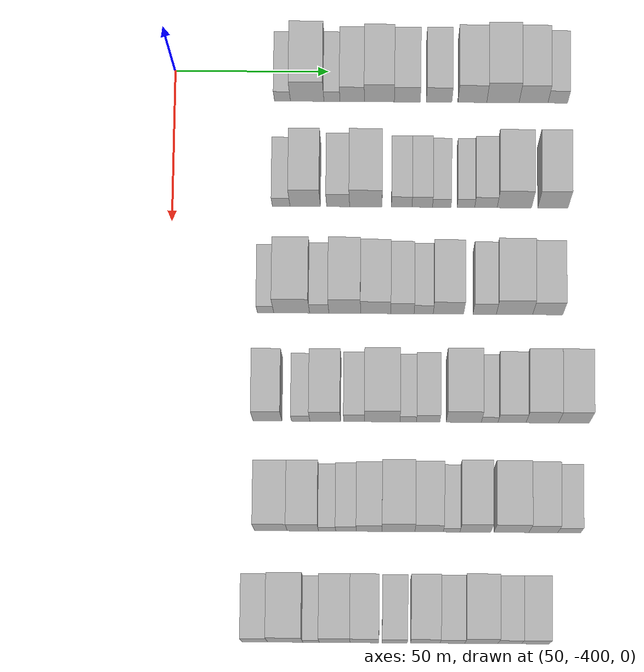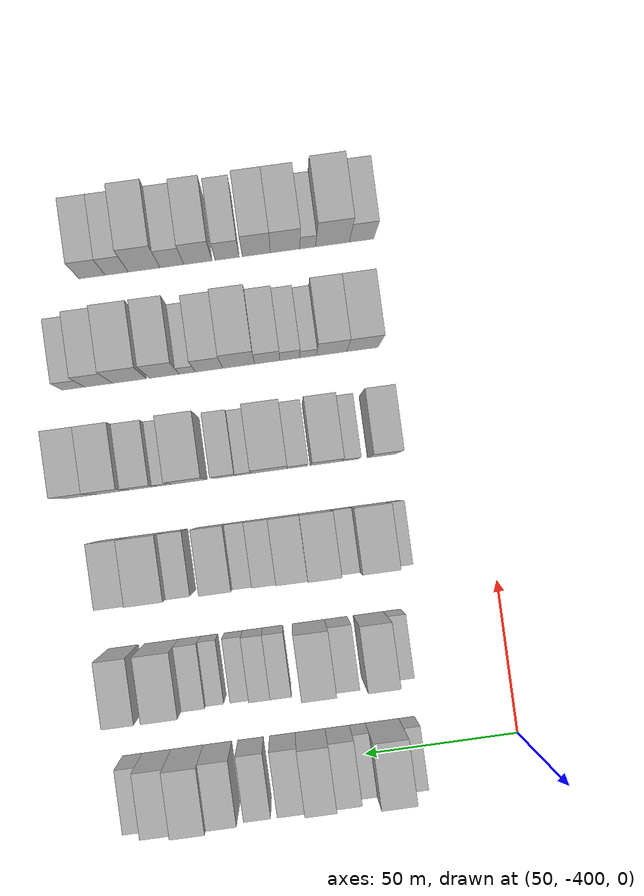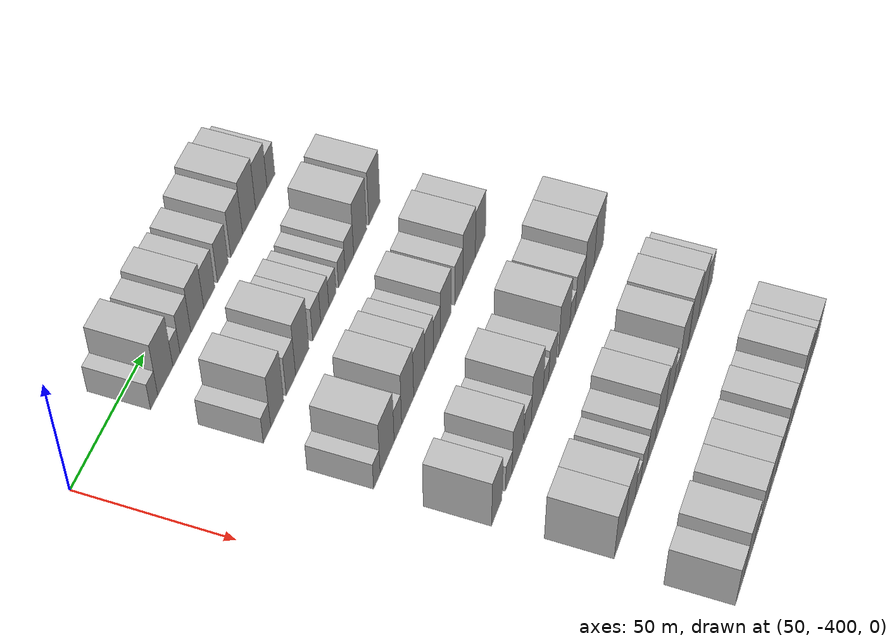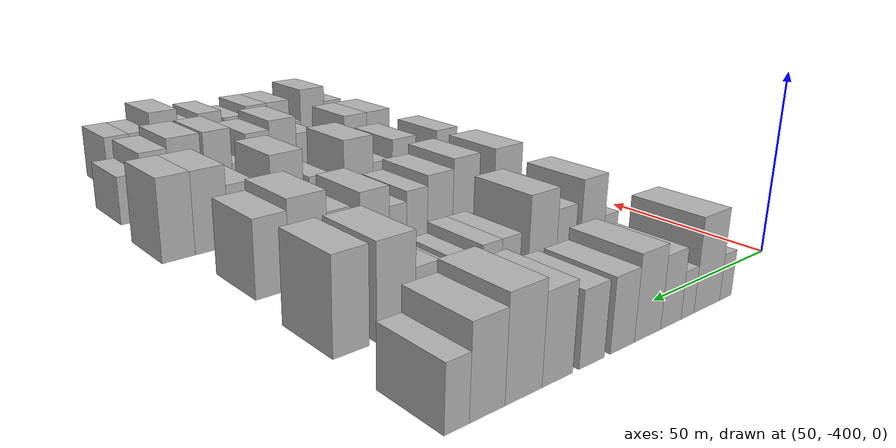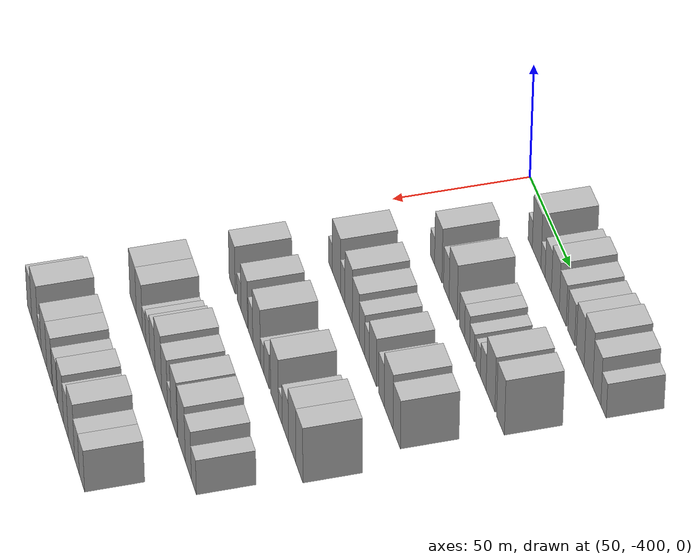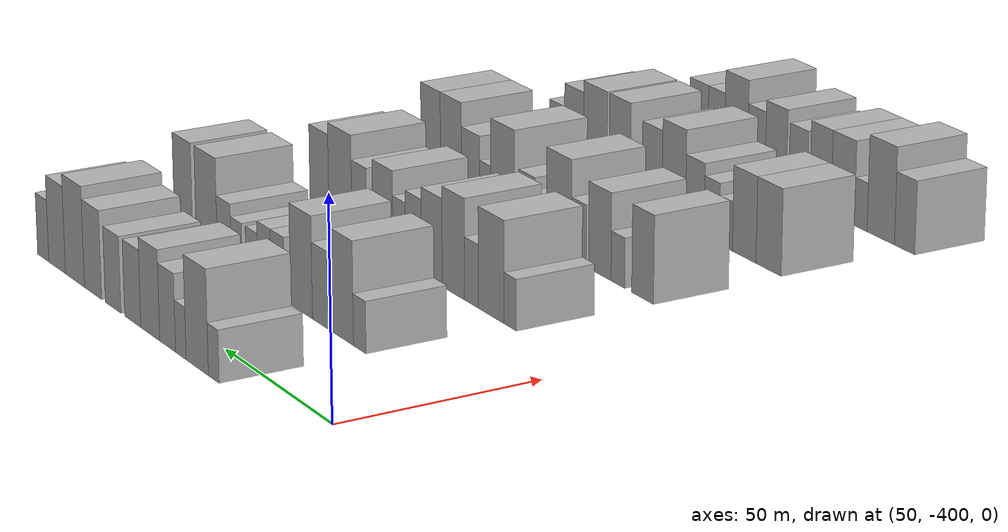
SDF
<sdf version="1.6">
 <world name="default">
  <model name="building_24">
   <static>1</static>
   <pose>50.0000 -364.8894 0 0.000000 0.000000 0.000000</pose>
   <link name="link">
    <pose>0 0 6.00 0 0 0</pose>
    <collision name="collision"><geometry><box><size>20.0000 5.1785 12.0000</size></box></geometry></collision>
    <visual name="visual">
     <cast_shadows>0</cast_shadows>
     <geometry><box><size>20.0000 5.1785 12.0000</size></box></geometry>
     <material>
      <script>
       <uri>model://HANNAS_wall/materials/scripts</uri>
       <uri>model://HANNAS_wall/materials/textures</uri>
       <name>vrc/HANNAS_wall</name>
      </script>
     </material>
    </visual>
   </link>
  </model>
  <model name="building_25">
   <static>1</static>
   <pose>50.0000 -356.8521 0 0.000000 0.000000 0.000000</pose>
   <link name="link">
    <pose>0 0 12.00 0 0 0</pose>
    <collision name="collision"><geometry><box><size>20.0000 10.8959 24.0000</size></box></geometry></collision>
    <visual name="visual">
     <cast_shadows>0</cast_shadows>
     <geometry><box><size>20.0000 10.8959 24.0000</size></box></geometry>
     <material>
      <script>
       <uri>model://HANNAS_wall/materials/scripts</uri>
       <uri>model://HANNAS_wall/materials/textures</uri>
       <name>vrc/HANNAS_wall</name>
      </script>
     </material>
    </visual>
   </link>
  </model>
  <model name="building_26">
   <static>1</static>
   <pose>50.0000 -348.7964 0 0.000000 0.000000 0.000000</pose>
   <link name="link">
    <pose>0 0 6.00 0 0 0</pose>
    <collision name="collision"><geometry><box><size>20.0000 5.2155 12.0000</size></box></geometry></collision>
    <visual name="visual">
     <cast_shadows>0</cast_shadows>
     <geometry><box><size>20.0000 5.2155 12.0000</size></box></geometry>
     <material>
      <script>
       <uri>model://HANNAS_wall/materials/scripts</uri>
       <uri>model://HANNAS_wall/materials/textures</uri>
       <name>vrc/HANNAS_wall</name>
      </script>
     </material>
    </visual>
   </link>
  </model>
  <model name="building_27">
   <static>1</static>
   <pose>50.0000 -342.2135 0 0.000000 0.000000 0.000000</pose>
   <link name="link">
    <pose>0 0 9.00 0 0 0</pose>
    <collision name="collision"><geometry><box><size>20.0000 7.9502 18.0000</size></box></geometry></collision>
    <visual name="visual">
     <cast_shadows>0</cast_shadows>
     <geometry><box><size>20.0000 7.9502 18.0000</size></box></geometry>
     <material>
      <script>
       <uri>model://HANNAS_wall/materials/scripts</uri>
       <uri>model://HANNAS_wall/materials/textures</uri>
       <name>vrc/HANNAS_wall</name>
      </script>
     </material>
    </visual>
   </link>
  </model>
  <model name="building_28">
   <static>1</static>
   <pose>50.0000 -333.3798 0 0.000000 0.000000 0.000000</pose>
   <link name="link">
    <pose>0 0 10.50 0 0 0</pose>
    <collision name="collision"><geometry><box><size>20.0000 9.7173 21.0000</size></box></geometry></collision>
    <visual name="visual">
     <cast_shadows>0</cast_shadows>
     <geometry><box><size>20.0000 9.7173 21.0000</size></box></geometry>
     <material>
      <script>
       <uri>model://HANNAS_wall/materials/scripts</uri>
       <uri>model://HANNAS_wall/materials/textures</uri>
       <name>vrc/HANNAS_wall</name>
      </script>
     </material>
    </visual>
   </link>
  </model>
  <model name="building_29">
   <static>1</static>
   <pose>50.0000 -324.3185 0 0.000000 0.000000 0.000000</pose>
   <link name="link">
    <pose>0 0 9.00 0 0 0</pose>
    <collision name="collision"><geometry><box><size>20.0000 8.4054 18.0000</size></box></geometry></collision>
    <visual name="visual">
     <cast_shadows>0</cast_shadows>
     <geometry><box><size>20.0000 8.4054 18.0000</size></box></geometry>
     <material>
      <script>
       <uri>model://HANNAS_wall/materials/scripts</uri>
       <uri>model://HANNAS_wall/materials/textures</uri>
       <name>vrc/HANNAS_wall</name>
      </script>
     </material>
    </visual>
   </link>
  </model>
  <model name="building_30">
   <static>1</static>
   <pose>50.0000 -313.9648 0 0.000000 0.000000 0.000000</pose>
   <link name="link">
    <pose>0 0 9.00 0 0 0</pose>
    <collision name="collision"><geometry><box><size>20.0000 8.3019 18.0000</size></box></geometry></collision>
    <visual name="visual">
     <cast_shadows>0</cast_shadows>
     <geometry><box><size>20.0000 8.3019 18.0000</size></box></geometry>
     <material>
      <script>
       <uri>model://HANNAS_wall/materials/scripts</uri>
       <uri>model://HANNAS_wall/materials/textures</uri>
       <name>vrc/HANNAS_wall</name>
      </script>
     </material>
    </visual>
   </link>
  </model>
  <model name="building_31">
   <static>1</static>
   <pose>50.0000 -303.1424 0 0.000000 0.000000 0.000000</pose>
   <link name="link">
    <pose>0 0 10.50 0 0 0</pose>
    <collision name="collision"><geometry><box><size>20.0000 9.3428 21.0000</size></box></geometry></collision>
    <visual name="visual">
     <cast_shadows>0</cast_shadows>
     <geometry><box><size>20.0000 9.3428 21.0000</size></box></geometry>
     <material>
      <script>
       <uri>model://HANNAS_wall/materials/scripts</uri>
       <uri>model://HANNAS_wall/materials/textures</uri>
       <name>vrc/HANNAS_wall</name>
      </script>
     </material>
    </visual>
   </link>
  </model>
  <model name="building_32">
   <static>1</static>
   <pose>50.0000 -293.2054 0 0.000000 0.000000 0.000000</pose>
   <link name="link">
    <pose>0 0 12.00 0 0 0</pose>
    <collision name="collision"><geometry><box><size>20.0000 10.5313 24.0000</size></box></geometry></collision>
    <visual name="visual">
     <cast_shadows>0</cast_shadows>
     <geometry><box><size>20.0000 10.5313 24.0000</size></box></geometry>
     <material>
      <script>
       <uri>model://HANNAS_wall/materials/scripts</uri>
       <uri>model://HANNAS_wall/materials/textures</uri>
       <name>vrc/HANNAS_wall</name>
      </script>
     </material>
    </visual>
   </link>
  </model>
  <model name="building_33">
   <static>1</static>
   <pose>50.0000 -283.2425 0 0.000000 0.000000 0.000000</pose>
   <link name="link">
    <pose>0 0 10.50 0 0 0</pose>
    <collision name="collision"><geometry><box><size>20.0000 9.3945 21.0000</size></box></geometry></collision>
    <visual name="visual">
     <cast_shadows>0</cast_shadows>
     <geometry><box><size>20.0000 9.3945 21.0000</size></box></geometry>
     <material>
      <script>
       <uri>model://HANNAS_wall/materials/scripts</uri>
       <uri>model://HANNAS_wall/materials/textures</uri>
       <name>vrc/HANNAS_wall</name>
      </script>
     </material>
    </visual>
   </link>
  </model>
  <model name="building_34">
   <static>1</static>
   <pose>50.0000 -275.3735 0 0.000000 0.000000 0.000000</pose>
   <link name="link">
    <pose>0 0 7.50 0 0 0</pose>
    <collision name="collision"><geometry><box><size>20.0000 6.3436 15.0000</size></box></geometry></collision>
    <visual name="visual">
     <cast_shadows>0</cast_shadows>
     <geometry><box><size>20.0000 6.3436 15.0000</size></box></geometry>
     <material>
      <script>
       <uri>model://HANNAS_wall/materials/scripts</uri>
       <uri>model://HANNAS_wall/materials/textures</uri>
       <name>vrc/HANNAS_wall</name>
      </script>
     </material>
    </visual>
   </link>
  </model>
  <model name="building_146">
   <static>1</static>
   <pose>85.0000 -364.8351 0 0.000000 0.000000 0.000000</pose>
   <link name="link">
    <pose>0 0 6.00 0 0 0</pose>
    <collision name="collision"><geometry><box><size>20.0000 5.6980 12.0000</size></box></geometry></collision>
    <visual name="visual">
     <cast_shadows>0</cast_shadows>
     <geometry><box><size>20.0000 5.6980 12.0000</size></box></geometry>
     <material>
      <script>
       <uri>model://HANNAS_wall/materials/scripts</uri>
       <uri>model://HANNAS_wall/materials/textures</uri>
       <name>vrc/HANNAS_wall</name>
      </script>
     </material>
    </visual>
   </link>
  </model>
  <model name="building_147">
   <static>1</static>
   <pose>85.0000 -357.0674 0 0.000000 0.000000 0.000000</pose>
   <link name="link">
    <pose>0 0 12.00 0 0 0</pose>
    <collision name="collision"><geometry><box><size>20.0000 9.8374 24.0000</size></box></geometry></collision>
    <visual name="visual">
     <cast_shadows>0</cast_shadows>
     <geometry><box><size>20.0000 9.8374 24.0000</size></box></geometry>
     <material>
      <script>
       <uri>model://HANNAS_wall/materials/scripts</uri>
       <uri>model://HANNAS_wall/materials/textures</uri>
       <name>vrc/HANNAS_wall</name>
      </script>
     </material>
    </visual>
   </link>
  </model>
  <model name="building_148">
   <static>1</static>
   <pose>85.0000 -346.4494 0 0.000000 0.000000 0.000000</pose>
   <link name="link">
    <pose>0 0 9.00 0 0 0</pose>
    <collision name="collision"><geometry><box><size>20.0000 7.3985 18.0000</size></box></geometry></collision>
    <visual name="visual">
     <cast_shadows>0</cast_shadows>
     <geometry><box><size>20.0000 7.3985 18.0000</size></box></geometry>
     <material>
      <script>
       <uri>model://HANNAS_wall/materials/scripts</uri>
       <uri>model://HANNAS_wall/materials/textures</uri>
       <name>vrc/HANNAS_wall</name>
      </script>
     </material>
    </visual>
   </link>
  </model>
  <model name="building_149">
   <static>1</static>
   <pose>85.0000 -337.4831 0 0.000000 0.000000 0.000000</pose>
   <link name="link">
    <pose>0 0 12.00 0 0 0</pose>
    <collision name="collision"><geometry><box><size>20.0000 10.5341 24.0000</size></box></geometry></collision>
    <visual name="visual">
     <cast_shadows>0</cast_shadows>
     <geometry><box><size>20.0000 10.5341 24.0000</size></box></geometry>
     <material>
      <script>
       <uri>model://HANNAS_wall/materials/scripts</uri>
       <uri>model://HANNAS_wall/materials/textures</uri>
       <name>vrc/HANNAS_wall</name>
      </script>
     </material>
    </visual>
   </link>
  </model>
  <model name="building_150">
   <static>1</static>
   <pose>85.0000 -325.9129 0 0.000000 0.000000 0.000000</pose>
   <link name="link">
    <pose>0 0 7.50 0 0 0</pose>
    <collision name="collision"><geometry><box><size>20.0000 6.6063 15.0000</size></box></geometry></collision>
    <visual name="visual">
     <cast_shadows>0</cast_shadows>
     <geometry><box><size>20.0000 6.6063 15.0000</size></box></geometry>
     <material>
      <script>
       <uri>model://HANNAS_wall/materials/scripts</uri>
       <uri>model://HANNAS_wall/materials/textures</uri>
       <name>vrc/HANNAS_wall</name>
      </script>
     </material>
    </visual>
   </link>
  </model>
  <model name="building_151">
   <static>1</static>
   <pose>85.0000 -319.3068 0 0.000000 0.000000 0.000000</pose>
   <link name="link">
    <pose>0 0 7.50 0 0 0</pose>
    <collision name="collision"><geometry><box><size>20.0000 6.6060 15.0000</size></box></geometry></collision>
    <visual name="visual">
     <cast_shadows>0</cast_shadows>
     <geometry><box><size>20.0000 6.6060 15.0000</size></box></geometry>
     <material>
      <script>
       <uri>model://HANNAS_wall/materials/scripts</uri>
       <uri>model://HANNAS_wall/materials/textures</uri>
       <name>vrc/HANNAS_wall</name>
      </script>
     </material>
    </visual>
   </link>
  </model>
  <model name="building_152">
   <static>1</static>
   <pose>85.0000 -313.0281 0 0.000000 0.000000 0.000000</pose>
   <link name="link">
    <pose>0 0 6.00 0 0 0</pose>
    <collision name="collision"><geometry><box><size>20.0000 5.9512 12.0000</size></box></geometry></collision>
    <visual name="visual">
     <cast_shadows>0</cast_shadows>
     <geometry><box><size>20.0000 5.9512 12.0000</size></box></geometry>
     <material>
      <script>
       <uri>model://HANNAS_wall/materials/scripts</uri>
       <uri>model://HANNAS_wall/materials/textures</uri>
       <name>vrc/HANNAS_wall</name>
      </script>
     </material>
    </visual>
   </link>
  </model>
  <model name="building_153">
   <static>1</static>
   <pose>85.0000 -305.2150 0 0.000000 0.000000 0.000000</pose>
   <link name="link">
    <pose>0 0 6.00 0 0 0</pose>
    <collision name="collision"><geometry><box><size>20.0000 5.6751 12.0000</size></box></geometry></collision>
    <visual name="visual">
     <cast_shadows>0</cast_shadows>
     <geometry><box><size>20.0000 5.6751 12.0000</size></box></geometry>
     <material>
      <script>
       <uri>model://HANNAS_wall/materials/scripts</uri>
       <uri>model://HANNAS_wall/materials/textures</uri>
       <name>vrc/HANNAS_wall</name>
      </script>
     </material>
    </visual>
   </link>
  </model>
  <model name="building_154">
   <static>1</static>
   <pose>85.0000 -298.7469 0 0.000000 0.000000 0.000000</pose>
   <link name="link">
    <pose>0 0 7.50 0 0 0</pose>
    <collision name="collision"><geometry><box><size>20.0000 7.2611 15.0000</size></box></geometry></collision>
    <visual name="visual">
     <cast_shadows>0</cast_shadows>
     <geometry><box><size>20.0000 7.2611 15.0000</size></box></geometry>
     <material>
      <script>
       <uri>model://HANNAS_wall/materials/scripts</uri>
       <uri>model://HANNAS_wall/materials/textures</uri>
       <name>vrc/HANNAS_wall</name>
      </script>
     </material>
    </visual>
   </link>
  </model>
  <model name="building_155">
   <static>1</static>
   <pose>85.0000 -289.5747 0 0.000000 0.000000 0.000000</pose>
   <link name="link">
    <pose>0 0 12.00 0 0 0</pose>
    <collision name="collision"><geometry><box><size>20.0000 11.0833 24.0000</size></box></geometry></collision>
    <visual name="visual">
     <cast_shadows>0</cast_shadows>
     <geometry><box><size>20.0000 11.0833 24.0000</size></box></geometry>
     <material>
      <script>
       <uri>model://HANNAS_wall/materials/scripts</uri>
       <uri>model://HANNAS_wall/materials/textures</uri>
       <name>vrc/HANNAS_wall</name>
      </script>
     </material>
    </visual>
   </link>
  </model>
  <model name="building_156">
   <static>1</static>
   <pose>85.0000 -277.1607 0 0.000000 0.000000 0.000000</pose>
   <link name="link">
    <pose>0 0 12.00 0 0 0</pose>
    <collision name="collision"><geometry><box><size>20.0000 9.7446 24.0000</size></box></geometry></collision>
    <visual name="visual">
     <cast_shadows>0</cast_shadows>
     <geometry><box><size>20.0000 9.7446 24.0000</size></box></geometry>
     <material>
      <script>
       <uri>model://HANNAS_wall/materials/scripts</uri>
       <uri>model://HANNAS_wall/materials/textures</uri>
       <name>vrc/HANNAS_wall</name>
      </script>
     </material>
    </visual>
   </link>
  </model>
  <model name="building_270">
   <static>1</static>
   <pose>120.0000 -369.3644 0 0.000000 0.000000 0.000000</pose>
   <link name="link">
    <pose>0 0 6.00 0 0 0</pose>
    <collision name="collision"><geometry><box><size>20.0000 5.2634 12.0000</size></box></geometry></collision>
    <visual name="visual">
     <cast_shadows>0</cast_shadows>
     <geometry><box><size>20.0000 5.2634 12.0000</size></box></geometry>
     <material>
      <script>
       <uri>model://HANNAS_wall/materials/scripts</uri>
       <uri>model://HANNAS_wall/materials/textures</uri>
       <name>vrc/HANNAS_wall</name>
      </script>
     </material>
    </visual>
   </link>
  </model>
  <model name="building_271">
   <static>1</static>
   <pose>120.0000 -360.9990 0 0.000000 0.000000 0.000000</pose>
   <link name="link">
    <pose>0 0 12.00 0 0 0</pose>
    <collision name="collision"><geometry><box><size>20.0000 11.4676 24.0000</size></box></geometry></collision>
    <visual name="visual">
     <cast_shadows>0</cast_shadows>
     <geometry><box><size>20.0000 11.4676 24.0000</size></box></geometry>
     <material>
      <script>
       <uri>model://HANNAS_wall/materials/scripts</uri>
       <uri>model://HANNAS_wall/materials/textures</uri>
       <name>vrc/HANNAS_wall</name>
      </script>
     </material>
    </visual>
   </link>
  </model>
  <model name="building_272">
   <static>1</static>
   <pose>120.0000 -352.1683 0 0.000000 0.000000 0.000000</pose>
   <link name="link">
    <pose>0 0 7.50 0 0 0</pose>
    <collision name="collision"><geometry><box><size>20.0000 6.1938 15.0000</size></box></geometry></collision>
    <visual name="visual">
     <cast_shadows>0</cast_shadows>
     <geometry><box><size>20.0000 6.1938 15.0000</size></box></geometry>
     <material>
      <script>
       <uri>model://HANNAS_wall/materials/scripts</uri>
       <uri>model://HANNAS_wall/materials/textures</uri>
       <name>vrc/HANNAS_wall</name>
      </script>
     </material>
    </visual>
   </link>
  </model>
  <model name="building_273">
   <static>1</static>
   <pose>120.0000 -343.9708 0 0.000000 0.000000 0.000000</pose>
   <link name="link">
    <pose>0 0 12.00 0 0 0</pose>
    <collision name="collision"><geometry><box><size>20.0000 10.2011 24.0000</size></box></geometry></collision>
    <visual name="visual">
     <cast_shadows>0</cast_shadows>
     <geometry><box><size>20.0000 10.2011 24.0000</size></box></geometry>
     <material>
      <script>
       <uri>model://HANNAS_wall/materials/scripts</uri>
       <uri>model://HANNAS_wall/materials/textures</uri>
       <name>vrc/HANNAS_wall</name>
      </script>
     </material>
    </visual>
   </link>
  </model>
  <model name="building_274">
   <static>1</static>
   <pose>120.0000 -334.0596 0 0.000000 0.000000 0.000000</pose>
   <link name="link">
    <pose>0 0 10.50 0 0 0</pose>
    <collision name="collision"><geometry><box><size>20.0000 9.6213 21.0000</size></box></geometry></collision>
    <visual name="visual">
     <cast_shadows>0</cast_shadows>
     <geometry><box><size>20.0000 9.6213 21.0000</size></box></geometry>
     <material>
      <script>
       <uri>model://HANNAS_wall/materials/scripts</uri>
       <uri>model://HANNAS_wall/materials/textures</uri>
       <name>vrc/HANNAS_wall</name>
      </script>
     </material>
    </visual>
   </link>
  </model>
  <model name="building_275">
   <static>1</static>
   <pose>120.0000 -325.5099 0 0.000000 0.000000 0.000000</pose>
   <link name="link">
    <pose>0 0 9.00 0 0 0</pose>
    <collision name="collision"><geometry><box><size>20.0000 7.4782 18.0000</size></box></geometry></collision>
    <visual name="visual">
     <cast_shadows>0</cast_shadows>
     <geometry><box><size>20.0000 7.4782 18.0000</size></box></geometry>
     <material>
      <script>
       <uri>model://HANNAS_wall/materials/scripts</uri>
       <uri>model://HANNAS_wall/materials/textures</uri>
       <name>vrc/HANNAS_wall</name>
      </script>
     </material>
    </visual>
   </link>
  </model>
  <model name="building_276">
   <static>1</static>
   <pose>120.0000 -318.7000 0 0.000000 0.000000 0.000000</pose>
   <link name="link">
    <pose>0 0 7.50 0 0 0</pose>
    <collision name="collision"><geometry><box><size>20.0000 6.1416 15.0000</size></box></geometry></collision>
    <visual name="visual">
     <cast_shadows>0</cast_shadows>
     <geometry><box><size>20.0000 6.1416 15.0000</size></box></geometry>
     <material>
      <script>
       <uri>model://HANNAS_wall/materials/scripts</uri>
       <uri>model://HANNAS_wall/materials/textures</uri>
       <name>vrc/HANNAS_wall</name>
      </script>
     </material>
    </visual>
   </link>
  </model>
  <model name="building_277">
   <static>1</static>
   <pose>120.0000 -310.7516 0 0.000000 0.000000 0.000000</pose>
   <link name="link">
    <pose>0 0 10.50 0 0 0</pose>
    <collision name="collision"><geometry><box><size>20.0000 9.7553 21.0000</size></box></geometry></collision>
    <visual name="visual">
     <cast_shadows>0</cast_shadows>
     <geometry><box><size>20.0000 9.7553 21.0000</size></box></geometry>
     <material>
      <script>
       <uri>model://HANNAS_wall/materials/scripts</uri>
       <uri>model://HANNAS_wall/materials/textures</uri>
       <name>vrc/HANNAS_wall</name>
      </script>
     </material>
    </visual>
   </link>
  </model>
  <model name="building_278">
   <static>1</static>
   <pose>120.0000 -299.1382 0 0.000000 0.000000 0.000000</pose>
   <link name="link">
    <pose>0 0 9.00 0 0 0</pose>
    <collision name="collision"><geometry><box><size>20.0000 7.4715 18.0000</size></box></geometry></collision>
    <visual name="visual">
     <cast_shadows>0</cast_shadows>
     <geometry><box><size>20.0000 7.4715 18.0000</size></box></geometry>
     <material>
      <script>
       <uri>model://HANNAS_wall/materials/scripts</uri>
       <uri>model://HANNAS_wall/materials/textures</uri>
       <name>vrc/HANNAS_wall</name>
      </script>
     </material>
    </visual>
   </link>
  </model>
  <model name="building_279">
   <static>1</static>
   <pose>120.0000 -289.5880 0 0.000000 0.000000 0.000000</pose>
   <link name="link">
    <pose>0 0 12.00 0 0 0</pose>
    <collision name="collision"><geometry><box><size>20.0000 11.6289 24.0000</size></box></geometry></collision>
    <visual name="visual">
     <cast_shadows>0</cast_shadows>
     <geometry><box><size>20.0000 11.6289 24.0000</size></box></geometry>
     <material>
      <script>
       <uri>model://HANNAS_wall/materials/scripts</uri>
       <uri>model://HANNAS_wall/materials/textures</uri>
       <name>vrc/HANNAS_wall</name>
      </script>
     </material>
    </visual>
   </link>
  </model>
  <model name="building_280">
   <static>1</static>
   <pose>120.0000 -278.9416 0 0.000000 0.000000 0.000000</pose>
   <link name="link">
    <pose>0 0 10.50 0 0 0</pose>
    <collision name="collision"><geometry><box><size>20.0000 9.6640 21.0000</size></box></geometry></collision>
    <visual name="visual">
     <cast_shadows>0</cast_shadows>
     <geometry><box><size>20.0000 9.6640 21.0000</size></box></geometry>
     <material>
      <script>
       <uri>model://HANNAS_wall/materials/scripts</uri>
       <uri>model://HANNAS_wall/materials/textures</uri>
       <name>vrc/HANNAS_wall</name>
      </script>
     </material>
    </visual>
   </link>
  </model>
  <model name="building_397">
   <static>1</static>
   <pose>155.0000 -368.2107 0 0.000000 0.000000 0.000000</pose>
   <link name="link">
    <pose>0 0 10.50 0 0 0</pose>
    <collision name="collision"><geometry><box><size>20.0000 9.1710 21.0000</size></box></geometry></collision>
    <visual name="visual">
     <cast_shadows>0</cast_shadows>
     <geometry><box><size>20.0000 9.1710 21.0000</size></box></geometry>
     <material>
      <script>
       <uri>model://HANNAS_wall/materials/scripts</uri>
       <uri>model://HANNAS_wall/materials/textures</uri>
       <name>vrc/HANNAS_wall</name>
      </script>
     </material>
    </visual>
   </link>
  </model>
  <model name="building_398">
   <static>1</static>
   <pose>155.0000 -357.6875 0 0.000000 0.000000 0.000000</pose>
   <link name="link">
    <pose>0 0 6.00 0 0 0</pose>
    <collision name="collision"><geometry><box><size>20.0000 5.8754 12.0000</size></box></geometry></collision>
    <visual name="visual">
     <cast_shadows>0</cast_shadows>
     <geometry><box><size>20.0000 5.8754 12.0000</size></box></geometry>
     <material>
      <script>
       <uri>model://HANNAS_wall/materials/scripts</uri>
       <uri>model://HANNAS_wall/materials/textures</uri>
       <name>vrc/HANNAS_wall</name>
      </script>
     </material>
    </visual>
   </link>
  </model>
  <model name="building_399">
   <static>1</static>
   <pose>155.0000 -349.8524 0 0.000000 0.000000 0.000000</pose>
   <link name="link">
    <pose>0 0 10.50 0 0 0</pose>
    <collision name="collision"><geometry><box><size>20.0000 9.7949 21.0000</size></box></geometry></collision>
    <visual name="visual">
     <cast_shadows>0</cast_shadows>
     <geometry><box><size>20.0000 9.7949 21.0000</size></box></geometry>
     <material>
      <script>
       <uri>model://HANNAS_wall/materials/scripts</uri>
       <uri>model://HANNAS_wall/materials/textures</uri>
       <name>vrc/HANNAS_wall</name>
      </script>
     </material>
    </visual>
   </link>
  </model>
  <model name="building_400">
   <static>1</static>
   <pose>155.0000 -340.6437 0 0.000000 0.000000 0.000000</pose>
   <link name="link">
    <pose>0 0 7.50 0 0 0</pose>
    <collision name="collision"><geometry><box><size>20.0000 6.6225 15.0000</size></box></geometry></collision>
    <visual name="visual">
     <cast_shadows>0</cast_shadows>
     <geometry><box><size>20.0000 6.6225 15.0000</size></box></geometry>
     <material>
      <script>
       <uri>model://HANNAS_wall/materials/scripts</uri>
       <uri>model://HANNAS_wall/materials/textures</uri>
       <name>vrc/HANNAS_wall</name>
      </script>
     </material>
    </visual>
   </link>
  </model>
  <model name="building_401">
   <static>1</static>
   <pose>155.0000 -331.7100 0 0.000000 0.000000 0.000000</pose>
   <link name="link">
    <pose>0 0 12.00 0 0 0</pose>
    <collision name="collision"><geometry><box><size>20.0000 11.2450 24.0000</size></box></geometry></collision>
    <visual name="visual">
     <cast_shadows>0</cast_shadows>
     <geometry><box><size>20.0000 11.2450 24.0000</size></box></geometry>
     <material>
      <script>
       <uri>model://HANNAS_wall/materials/scripts</uri>
       <uri>model://HANNAS_wall/materials/textures</uri>
       <name>vrc/HANNAS_wall</name>
      </script>
     </material>
    </visual>
   </link>
  </model>
  <model name="building_402">
   <static>1</static>
   <pose>155.0000 -323.4785 0 0.000000 0.000000 0.000000</pose>
   <link name="link">
    <pose>0 0 6.00 0 0 0</pose>
    <collision name="collision"><geometry><box><size>20.0000 5.2180 12.0000</size></box></geometry></collision>
    <visual name="visual">
     <cast_shadows>0</cast_shadows>
     <geometry><box><size>20.0000 5.2180 12.0000</size></box></geometry>
     <material>
      <script>
       <uri>model://HANNAS_wall/materials/scripts</uri>
       <uri>model://HANNAS_wall/materials/textures</uri>
       <name>vrc/HANNAS_wall</name>
      </script>
     </material>
    </visual>
   </link>
  </model>
  <model name="building_403">
   <static>1</static>
   <pose>155.0000 -317.1235 0 0.000000 0.000000 0.000000</pose>
   <link name="link">
    <pose>0 0 7.50 0 0 0</pose>
    <collision name="collision"><geometry><box><size>20.0000 7.4919 15.0000</size></box></geometry></collision>
    <visual name="visual">
     <cast_shadows>0</cast_shadows>
     <geometry><box><size>20.0000 7.4919 15.0000</size></box></geometry>
     <material>
      <script>
       <uri>model://HANNAS_wall/materials/scripts</uri>
       <uri>model://HANNAS_wall/materials/textures</uri>
       <name>vrc/HANNAS_wall</name>
      </script>
     </material>
    </visual>
   </link>
  </model>
  <model name="building_404">
   <static>1</static>
   <pose>155.0000 -305.7935 0 0.000000 0.000000 0.000000</pose>
   <link name="link">
    <pose>0 0 12.00 0 0 0</pose>
    <collision name="collision"><geometry><box><size>20.0000 11.1681 24.0000</size></box></geometry></collision>
    <visual name="visual">
     <cast_shadows>0</cast_shadows>
     <geometry><box><size>20.0000 11.1681 24.0000</size></box></geometry>
     <material>
      <script>
       <uri>model://HANNAS_wall/materials/scripts</uri>
       <uri>model://HANNAS_wall/materials/textures</uri>
       <name>vrc/HANNAS_wall</name>
      </script>
     </material>
    </visual>
   </link>
  </model>
  <model name="building_405">
   <static>1</static>
   <pose>155.0000 -297.5695 0 0.000000 0.000000 0.000000</pose>
   <link name="link">
    <pose>0 0 6.00 0 0 0</pose>
    <collision name="collision"><geometry><box><size>20.0000 5.2800 12.0000</size></box></geometry></collision>
    <visual name="visual">
     <cast_shadows>0</cast_shadows>
     <geometry><box><size>20.0000 5.2800 12.0000</size></box></geometry>
     <material>
      <script>
       <uri>model://HANNAS_wall/materials/scripts</uri>
       <uri>model://HANNAS_wall/materials/textures</uri>
       <name>vrc/HANNAS_wall</name>
      </script>
     </material>
    </visual>
   </link>
  </model>
  <model name="building_406">
   <static>1</static>
   <pose>155.0000 -290.4606 0 0.000000 0.000000 0.000000</pose>
   <link name="link">
    <pose>0 0 9.00 0 0 0</pose>
    <collision name="collision"><geometry><box><size>20.0000 8.9379 18.0000</size></box></geometry></collision>
    <visual name="visual">
     <cast_shadows>0</cast_shadows>
     <geometry><box><size>20.0000 8.9379 18.0000</size></box></geometry>
     <material>
      <script>
       <uri>model://HANNAS_wall/materials/scripts</uri>
       <uri>model://HANNAS_wall/materials/textures</uri>
       <name>vrc/HANNAS_wall</name>
      </script>
     </material>
    </visual>
   </link>
  </model>
  <model name="building_407">
   <static>1</static>
   <pose>155.0000 -280.8181 0 0.000000 0.000000 0.000000</pose>
   <link name="link">
    <pose>0 0 12.00 0 0 0</pose>
    <collision name="collision"><geometry><box><size>20.0000 10.3470 24.0000</size></box></geometry></collision>
    <visual name="visual">
     <cast_shadows>0</cast_shadows>
     <geometry><box><size>20.0000 10.3470 24.0000</size></box></geometry>
     <material>
      <script>
       <uri>model://HANNAS_wall/materials/scripts</uri>
       <uri>model://HANNAS_wall/materials/textures</uri>
       <name>vrc/HANNAS_wall</name>
      </script>
     </material>
    </visual>
   </link>
  </model>
  <model name="building_408">
   <static>1</static>
   <pose>155.0000 -270.7621 0 0.000000 0.000000 0.000000</pose>
   <link name="link">
    <pose>0 0 12.00 0 0 0</pose>
    <collision name="collision"><geometry><box><size>20.0000 9.7650 24.0000</size></box></geometry></collision>
    <visual name="visual">
     <cast_shadows>0</cast_shadows>
     <geometry><box><size>20.0000 9.7650 24.0000</size></box></geometry>
     <material>
      <script>
       <uri>model://HANNAS_wall/materials/scripts</uri>
       <uri>model://HANNAS_wall/materials/textures</uri>
       <name>vrc/HANNAS_wall</name>
      </script>
     </material>
    </visual>
   </link>
  </model>
  <model name="building_518">
   <static>1</static>
   <pose>190.0000 -366.6395 0 0.000000 0.000000 0.000000</pose>
   <link name="link">
    <pose>0 0 10.50 0 0 0</pose>
    <collision name="collision"><geometry><box><size>20.0000 10.3120 21.0000</size></box></geometry></collision>
    <visual name="visual">
     <cast_shadows>0</cast_shadows>
     <geometry><box><size>20.0000 10.3120 21.0000</size></box></geometry>
     <material>
      <script>
       <uri>model://HANNAS_wall/materials/scripts</uri>
       <uri>model://HANNAS_wall/materials/textures</uri>
       <name>vrc/HANNAS_wall</name>
      </script>
     </material>
    </visual>
   </link>
  </model>
  <model name="building_519">
   <static>1</static>
   <pose>190.0000 -356.5546 0 0.000000 0.000000 0.000000</pose>
   <link name="link">
    <pose>0 0 10.50 0 0 0</pose>
    <collision name="collision"><geometry><box><size>20.0000 9.8577 21.0000</size></box></geometry></collision>
    <visual name="visual">
     <cast_shadows>0</cast_shadows>
     <geometry><box><size>20.0000 9.8577 21.0000</size></box></geometry>
     <material>
      <script>
       <uri>model://HANNAS_wall/materials/scripts</uri>
       <uri>model://HANNAS_wall/materials/textures</uri>
       <name>vrc/HANNAS_wall</name>
      </script>
     </material>
    </visual>
   </link>
  </model>
  <model name="building_520">
   <static>1</static>
   <pose>190.0000 -348.8999 0 0.000000 0.000000 0.000000</pose>
   <link name="link">
    <pose>0 0 6.00 0 0 0</pose>
    <collision name="collision"><geometry><box><size>20.0000 5.4517 12.0000</size></box></geometry></collision>
    <visual name="visual">
     <cast_shadows>0</cast_shadows>
     <geometry><box><size>20.0000 5.4517 12.0000</size></box></geometry>
     <material>
      <script>
       <uri>model://HANNAS_wall/materials/scripts</uri>
       <uri>model://HANNAS_wall/materials/textures</uri>
       <name>vrc/HANNAS_wall</name>
      </script>
     </material>
    </visual>
   </link>
  </model>
  <model name="building_521">
   <static>1</static>
   <pose>190.0000 -342.9201 0 0.000000 0.000000 0.000000</pose>
   <link name="link">
    <pose>0 0 7.50 0 0 0</pose>
    <collision name="collision"><geometry><box><size>20.0000 6.5080 15.0000</size></box></geometry></collision>
    <visual name="visual">
     <cast_shadows>0</cast_shadows>
     <geometry><box><size>20.0000 6.5080 15.0000</size></box></geometry>
     <material>
      <script>
       <uri>model://HANNAS_wall/materials/scripts</uri>
       <uri>model://HANNAS_wall/materials/textures</uri>
       <name>vrc/HANNAS_wall</name>
      </script>
     </material>
    </visual>
   </link>
  </model>
  <model name="building_522">
   <static>1</static>
   <pose>190.0000 -335.6119 0 0.000000 0.000000 0.000000</pose>
   <link name="link">
    <pose>0 0 9.00 0 0 0</pose>
    <collision name="collision"><geometry><box><size>20.0000 8.1084 18.0000</size></box></geometry></collision>
    <visual name="visual">
     <cast_shadows>0</cast_shadows>
     <geometry><box><size>20.0000 8.1084 18.0000</size></box></geometry>
     <material>
      <script>
       <uri>model://HANNAS_wall/materials/scripts</uri>
       <uri>model://HANNAS_wall/materials/textures</uri>
       <name>vrc/HANNAS_wall</name>
      </script>
     </material>
    </visual>
   </link>
  </model>
  <model name="building_523">
   <static>1</static>
   <pose>190.0000 -326.3696 0 0.000000 0.000000 0.000000</pose>
   <link name="link">
    <pose>0 0 12.00 0 0 0</pose>
    <collision name="collision"><geometry><box><size>20.0000 10.3762 24.0000</size></box></geometry></collision>
    <visual name="visual">
     <cast_shadows>0</cast_shadows>
     <geometry><box><size>20.0000 10.3762 24.0000</size></box></geometry>
     <material>
      <script>
       <uri>model://HANNAS_wall/materials/scripts</uri>
       <uri>model://HANNAS_wall/materials/textures</uri>
       <name>vrc/HANNAS_wall</name>
      </script>
     </material>
    </visual>
   </link>
  </model>
  <model name="building_524">
   <static>1</static>
   <pose>190.0000 -316.7179 0 0.000000 0.000000 0.000000</pose>
   <link name="link">
    <pose>0 0 10.50 0 0 0</pose>
    <collision name="collision"><geometry><box><size>20.0000 8.9272 21.0000</size></box></geometry></collision>
    <visual name="visual">
     <cast_shadows>0</cast_shadows>
     <geometry><box><size>20.0000 8.9272 21.0000</size></box></geometry>
     <material>
      <script>
       <uri>model://HANNAS_wall/materials/scripts</uri>
       <uri>model://HANNAS_wall/materials/textures</uri>
       <name>vrc/HANNAS_wall</name>
      </script>
     </material>
    </visual>
   </link>
  </model>
  <model name="building_525">
   <static>1</static>
   <pose>190.0000 -309.6119 0 0.000000 0.000000 0.000000</pose>
   <link name="link">
    <pose>0 0 6.00 0 0 0</pose>
    <collision name="collision"><geometry><box><size>20.0000 5.2848 12.0000</size></box></geometry></collision>
    <visual name="visual">
     <cast_shadows>0</cast_shadows>
     <geometry><box><size>20.0000 5.2848 12.0000</size></box></geometry>
     <material>
      <script>
       <uri>model://HANNAS_wall/materials/scripts</uri>
       <uri>model://HANNAS_wall/materials/textures</uri>
       <name>vrc/HANNAS_wall</name>
      </script>
     </material>
    </visual>
   </link>
  </model>
  <model name="building_526">
   <static>1</static>
   <pose>190.0000 -302.0915 0 0.000000 0.000000 0.000000</pose>
   <link name="link">
    <pose>0 0 12.00 0 0 0</pose>
    <collision name="collision"><geometry><box><size>20.0000 9.7559 24.0000</size></box></geometry></collision>
    <visual name="visual">
     <cast_shadows>0</cast_shadows>
     <geometry><box><size>20.0000 9.7559 24.0000</size></box></geometry>
     <material>
      <script>
       <uri>model://HANNAS_wall/materials/scripts</uri>
       <uri>model://HANNAS_wall/materials/textures</uri>
       <name>vrc/HANNAS_wall</name>
      </script>
     </material>
    </visual>
   </link>
  </model>
  <model name="building_527">
   <static>1</static>
   <pose>190.0000 -290.6841 0 0.000000 0.000000 0.000000</pose>
   <link name="link">
    <pose>0 0 12.00 0 0 0</pose>
    <collision name="collision"><geometry><box><size>20.0000 11.0589 24.0000</size></box></geometry></collision>
    <visual name="visual">
     <cast_shadows>0</cast_shadows>
     <geometry><box><size>20.0000 11.0589 24.0000</size></box></geometry>
     <material>
      <script>
       <uri>model://HANNAS_wall/materials/scripts</uri>
       <uri>model://HANNAS_wall/materials/textures</uri>
       <name>vrc/HANNAS_wall</name>
      </script>
     </material>
    </visual>
   </link>
  </model>
  <model name="building_528">
   <static>1</static>
   <pose>190.0000 -280.6127 0 0.000000 0.000000 0.000000</pose>
   <link name="link">
    <pose>0 0 10.50 0 0 0</pose>
    <collision name="collision"><geometry><box><size>20.0000 9.0837 21.0000</size></box></geometry></collision>
    <visual name="visual">
     <cast_shadows>0</cast_shadows>
     <geometry><box><size>20.0000 9.0837 21.0000</size></box></geometry>
     <material>
      <script>
       <uri>model://HANNAS_wall/materials/scripts</uri>
       <uri>model://HANNAS_wall/materials/textures</uri>
       <name>vrc/HANNAS_wall</name>
      </script>
     </material>
    </visual>
   </link>
  </model>
  <model name="building_529">
   <static>1</static>
   <pose>190.0000 -272.4365 0 0.000000 0.000000 0.000000</pose>
   <link name="link">
    <pose>0 0 7.50 0 0 0</pose>
    <collision name="collision"><geometry><box><size>20.0000 7.2687 15.0000</size></box></geometry></collision>
    <visual name="visual">
     <cast_shadows>0</cast_shadows>
     <geometry><box><size>20.0000 7.2687 15.0000</size></box></geometry>
     <material>
      <script>
       <uri>model://HANNAS_wall/materials/scripts</uri>
       <uri>model://HANNAS_wall/materials/textures</uri>
       <name>vrc/HANNAS_wall</name>
      </script>
     </material>
    </visual>
   </link>
  </model>
  <model name="building_644">
   <static>1</static>
   <pose>225.0000 -371.1569 0 0.000000 0.000000 0.000000</pose>
   <link name="link">
    <pose>0 0 9.00 0 0 0</pose>
    <collision name="collision"><geometry><box><size>20.0000 8.0227 18.0000</size></box></geometry></collision>
    <visual name="visual">
     <cast_shadows>0</cast_shadows>
     <geometry><box><size>20.0000 8.0227 18.0000</size></box></geometry>
     <material>
      <script>
       <uri>model://HANNAS_wall/materials/scripts</uri>
       <uri>model://HANNAS_wall/materials/textures</uri>
       <name>vrc/HANNAS_wall</name>
      </script>
     </material>
    </visual>
   </link>
  </model>
  <model name="building_645">
   <static>1</static>
   <pose>225.0000 -361.6463 0 0.000000 0.000000 0.000000</pose>
   <link name="link">
    <pose>0 0 12.00 0 0 0</pose>
    <collision name="collision"><geometry><box><size>20.0000 10.9986 24.0000</size></box></geometry></collision>
    <visual name="visual">
     <cast_shadows>0</cast_shadows>
     <geometry><box><size>20.0000 10.9986 24.0000</size></box></geometry>
     <material>
      <script>
       <uri>model://HANNAS_wall/materials/scripts</uri>
       <uri>model://HANNAS_wall/materials/textures</uri>
       <name>vrc/HANNAS_wall</name>
      </script>
     </material>
    </visual>
   </link>
  </model>
  <model name="building_646">
   <static>1</static>
   <pose>225.0000 -353.5627 0 0.000000 0.000000 0.000000</pose>
   <link name="link">
    <pose>0 0 6.00 0 0 0</pose>
    <collision name="collision"><geometry><box><size>20.0000 5.1685 12.0000</size></box></geometry></collision>
    <visual name="visual">
     <cast_shadows>0</cast_shadows>
     <geometry><box><size>20.0000 5.1685 12.0000</size></box></geometry>
     <material>
      <script>
       <uri>model://HANNAS_wall/materials/scripts</uri>
       <uri>model://HANNAS_wall/materials/textures</uri>
       <name>vrc/HANNAS_wall</name>
      </script>
     </material>
    </visual>
   </link>
  </model>
  <model name="building_647">
   <static>1</static>
   <pose>225.0000 -346.1576 0 0.000000 0.000000 0.000000</pose>
   <link name="link">
    <pose>0 0 10.50 0 0 0</pose>
    <collision name="collision"><geometry><box><size>20.0000 9.6417 21.0000</size></box></geometry></collision>
    <visual name="visual">
     <cast_shadows>0</cast_shadows>
     <geometry><box><size>20.0000 9.6417 21.0000</size></box></geometry>
     <material>
      <script>
       <uri>model://HANNAS_wall/materials/scripts</uri>
       <uri>model://HANNAS_wall/materials/textures</uri>
       <name>vrc/HANNAS_wall</name>
      </script>
     </material>
    </visual>
   </link>
  </model>
  <model name="building_648">
   <static>1</static>
   <pose>225.0000 -336.8144 0 0.000000 0.000000 0.000000</pose>
   <link name="link">
    <pose>0 0 10.50 0 0 0</pose>
    <collision name="collision"><geometry><box><size>20.0000 9.0447 21.0000</size></box></geometry></collision>
    <visual name="visual">
     <cast_shadows>0</cast_shadows>
     <geometry><box><size>20.0000 9.0447 21.0000</size></box></geometry>
     <material>
      <script>
       <uri>model://HANNAS_wall/materials/scripts</uri>
       <uri>model://HANNAS_wall/materials/textures</uri>
       <name>vrc/HANNAS_wall</name>
      </script>
     </material>
    </visual>
   </link>
  </model>
  <model name="building_649">
   <static>1</static>
   <pose>225.0000 -327.3464 0 0.000000 0.000000 0.000000</pose>
   <link name="link">
    <pose>0 0 9.00 0 0 0</pose>
    <collision name="collision"><geometry><box><size>20.0000 7.8914 18.0000</size></box></geometry></collision>
    <visual name="visual">
     <cast_shadows>0</cast_shadows>
     <geometry><box><size>20.0000 7.8914 18.0000</size></box></geometry>
     <material>
      <script>
       <uri>model://HANNAS_wall/materials/scripts</uri>
       <uri>model://HANNAS_wall/materials/textures</uri>
       <name>vrc/HANNAS_wall</name>
      </script>
     </material>
    </visual>
   </link>
  </model>
  <model name="building_650">
   <static>1</static>
   <pose>225.0000 -317.7765 0 0.000000 0.000000 0.000000</pose>
   <link name="link">
    <pose>0 0 10.50 0 0 0</pose>
    <collision name="collision"><geometry><box><size>20.0000 9.2484 21.0000</size></box></geometry></collision>
    <visual name="visual">
     <cast_shadows>0</cast_shadows>
     <geometry><box><size>20.0000 9.2484 21.0000</size></box></geometry>
     <material>
      <script>
       <uri>model://HANNAS_wall/materials/scripts</uri>
       <uri>model://HANNAS_wall/materials/textures</uri>
       <name>vrc/HANNAS_wall</name>
      </script>
     </material>
    </visual>
   </link>
  </model>
  <model name="building_651">
   <static>1</static>
   <pose>225.0000 -309.2663 0 0.000000 0.000000 0.000000</pose>
   <link name="link">
    <pose>0 0 9.00 0 0 0</pose>
    <collision name="collision"><geometry><box><size>20.0000 7.7721 18.0000</size></box></geometry></collision>
    <visual name="visual">
     <cast_shadows>0</cast_shadows>
     <geometry><box><size>20.0000 7.7721 18.0000</size></box></geometry>
     <material>
      <script>
       <uri>model://HANNAS_wall/materials/scripts</uri>
       <uri>model://HANNAS_wall/materials/textures</uri>
       <name>vrc/HANNAS_wall</name>
      </script>
     </material>
    </visual>
   </link>
  </model>
  <model name="building_652">
   <static>1</static>
   <pose>225.0000 -300.2149 0 0.000000 0.000000 0.000000</pose>
   <link name="link">
    <pose>0 0 12.00 0 0 0</pose>
    <collision name="collision"><geometry><box><size>20.0000 10.3306 24.0000</size></box></geometry></collision>
    <visual name="visual">
     <cast_shadows>0</cast_shadows>
     <geometry><box><size>20.0000 10.3306 24.0000</size></box></geometry>
     <material>
      <script>
       <uri>model://HANNAS_wall/materials/scripts</uri>
       <uri>model://HANNAS_wall/materials/textures</uri>
       <name>vrc/HANNAS_wall</name>
      </script>
     </material>
    </visual>
   </link>
  </model>
  <model name="building_653">
   <static>1</static>
   <pose>225.0000 -291.2835 0 0.000000 0.000000 0.000000</pose>
   <link name="link">
    <pose>0 0 9.00 0 0 0</pose>
    <collision name="collision"><geometry><box><size>20.0000 7.5321 18.0000</size></box></geometry></collision>
    <visual name="visual">
     <cast_shadows>0</cast_shadows>
     <geometry><box><size>20.0000 7.5321 18.0000</size></box></geometry>
     <material>
      <script>
       <uri>model://HANNAS_wall/materials/scripts</uri>
       <uri>model://HANNAS_wall/materials/textures</uri>
       <name>vrc/HANNAS_wall</name>
      </script>
     </material>
    </visual>
   </link>
  </model>
  <model name="building_654">
   <static>1</static>
   <pose>225.0000 -283.2065 0 0.000000 0.000000 0.000000</pose>
   <link name="link">
    <pose>0 0 9.00 0 0 0</pose>
    <collision name="collision"><geometry><box><size>20.0000 8.6220 18.0000</size></box></geometry></collision>
    <visual name="visual">
     <cast_shadows>0</cast_shadows>
     <geometry><box><size>20.0000 8.6220 18.0000</size></box></geometry>
     <material>
      <script>
       <uri>model://HANNAS_wall/materials/scripts</uri>
       <uri>model://HANNAS_wall/materials/textures</uri>
       <name>vrc/HANNAS_wall</name>
      </script>
     </material>
    </visual>
   </link>
  </model>
 </world>
</sdf>
